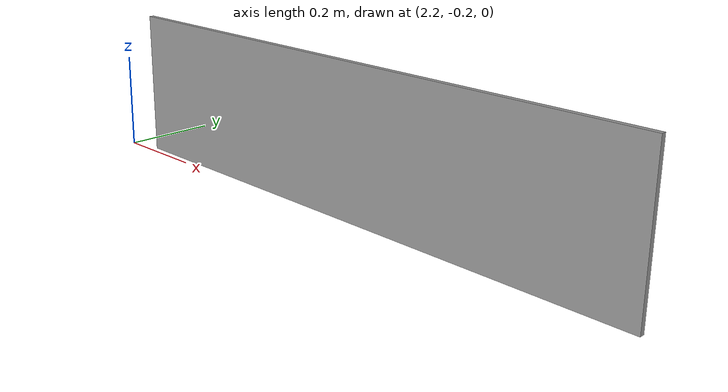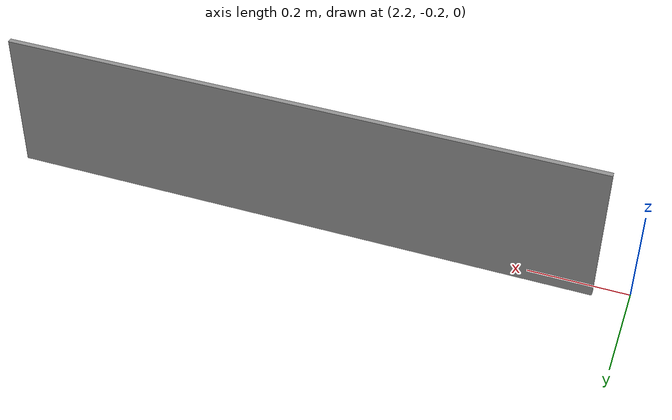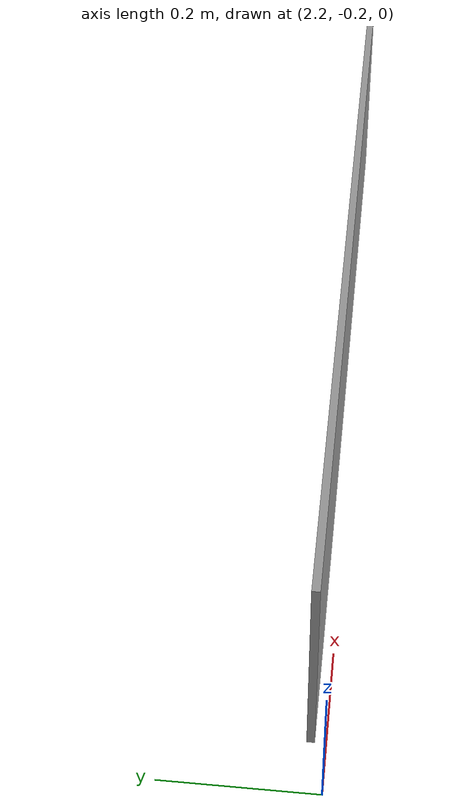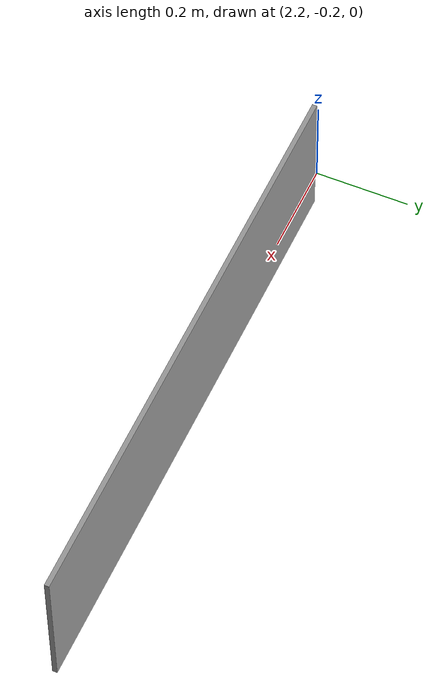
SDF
<?xml version='1.0'?>
<sdf version='1.7'>
  <model name='Wood_1.2'>
    <pose>1.73457 -0.09266 0 0 -0 0</pose>
    <link name='Wall_4'>
      <collision name='Wall_4_Collision'>
        <geometry>
          <box>
            <size>1.2 0.01 0.3</size>
          </box>
        </geometry>
        <pose>0 0 0.15 0 -0 0</pose>
      </collision>
      <visual name='Wall_4_Visual'>
        <pose>0 0 0.15 0 -0 0</pose>
        <geometry>
          <box>
            <size>1.2 0.01 0.3</size>
          </box>
        </geometry>
        <material>
          <script>
            <uri>file://media/materials/scripts/gazebo.material</uri>
            <name>Gazebo/Grey</name>
          </script>
          <ambient>1 1 1 1</ambient>
        </material>
        <meta>
          <layer>0</layer>
        </meta>
      </visual>
      <pose>1.13457 -0.08766 0 0 -0 0</pose>
    </link>
    <static>1</static>
  </model>
</sdf>
